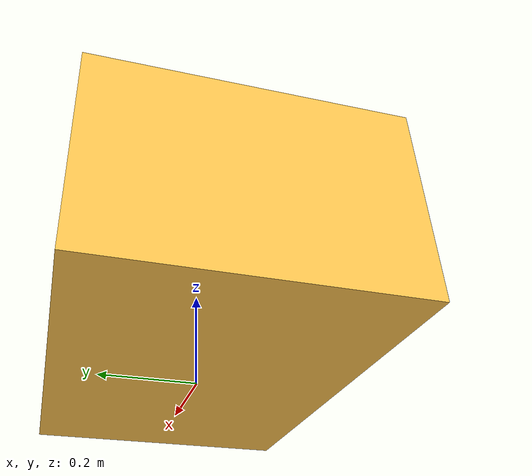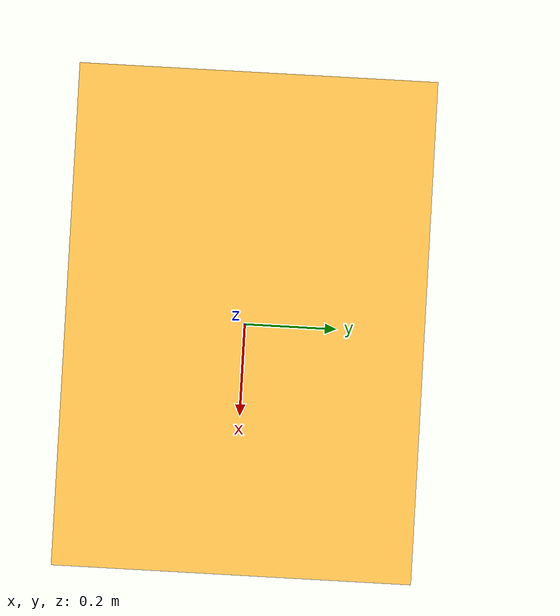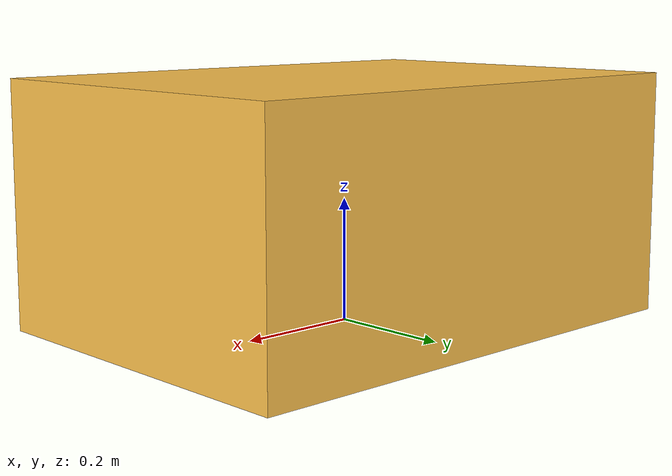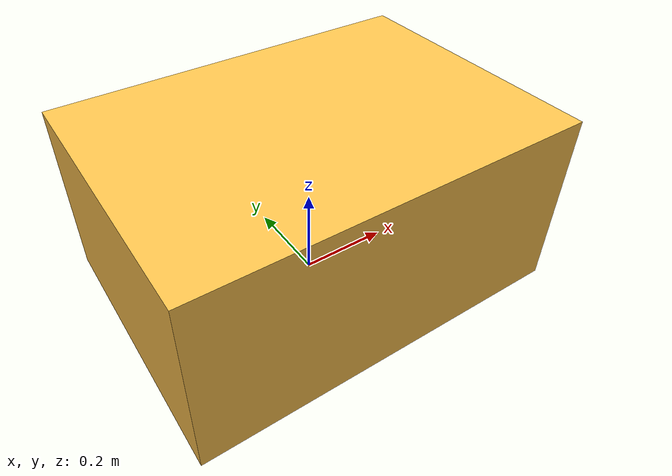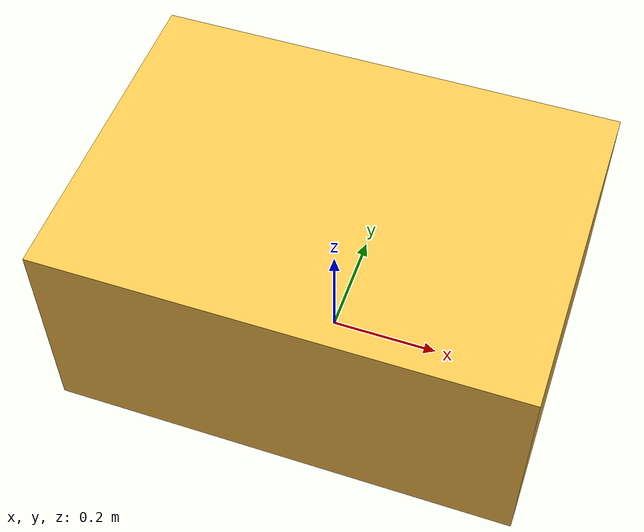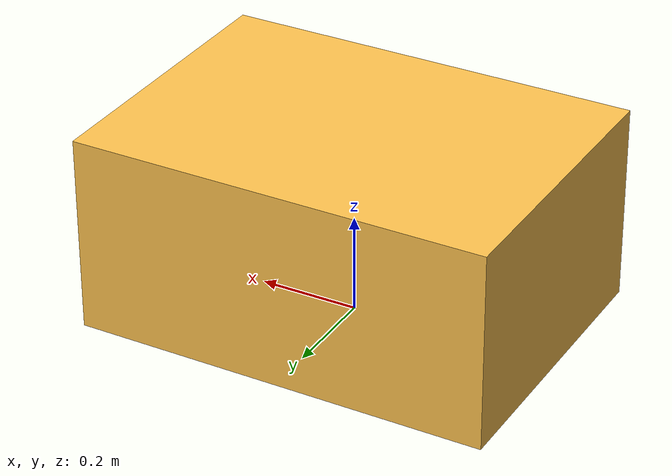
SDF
<?xml version='1.0'?>
<sdf version='1.6'>
  <model name='Box_33x15'>
    <link name='Wall'>
    <pose frame=''>0 0 0.1985 0 0 0</pose>
	<inertial>
	  <mass>5</mass>
	   <inertia>
	     <ixx>0.2157</ixx>
	     <iyy>0.3597</iyy>
	     <izz>0.4440</izz>
    	     <ixy>0</ixy>
	     <ixz>0</ixz>
	     <iyz>0</iyz>
	   </inertia>
	</inertial>
      <collision name='Wall_Collision'>
        <geometry>
          <box>
            <size>0.84 0.6 0.397 </size>
          </box>
        </geometry>
       </collision>
      <visual name='Wall_Visual'>
       <geometry>
          <box>
            <size>0.84 0.6 0.397 </size>
          </box>
        </geometry>
        <material>
          <script>
            <uri>file://media/materials/scripts/gazebo.material</uri>
            <name>Gazebo/Grey</name>
          </script>
          <ambient>1 0.764706 0.305882 1</ambient>
        </material>
      </visual>
     </link>

    <static>1</static>
  </model>
</sdf>
